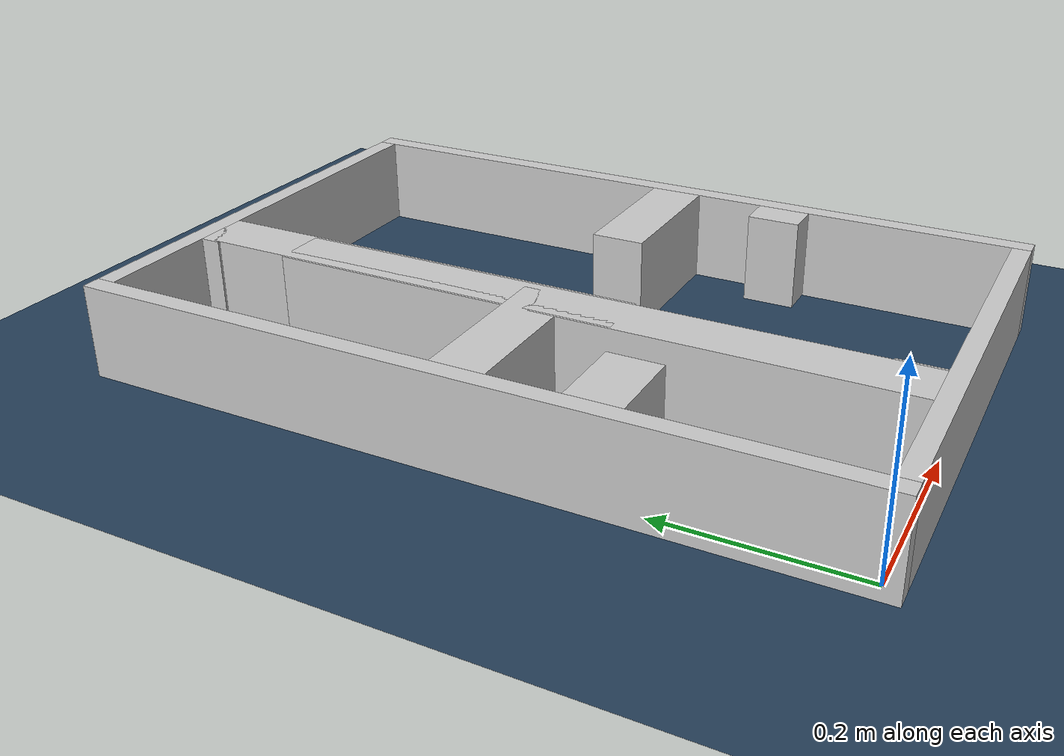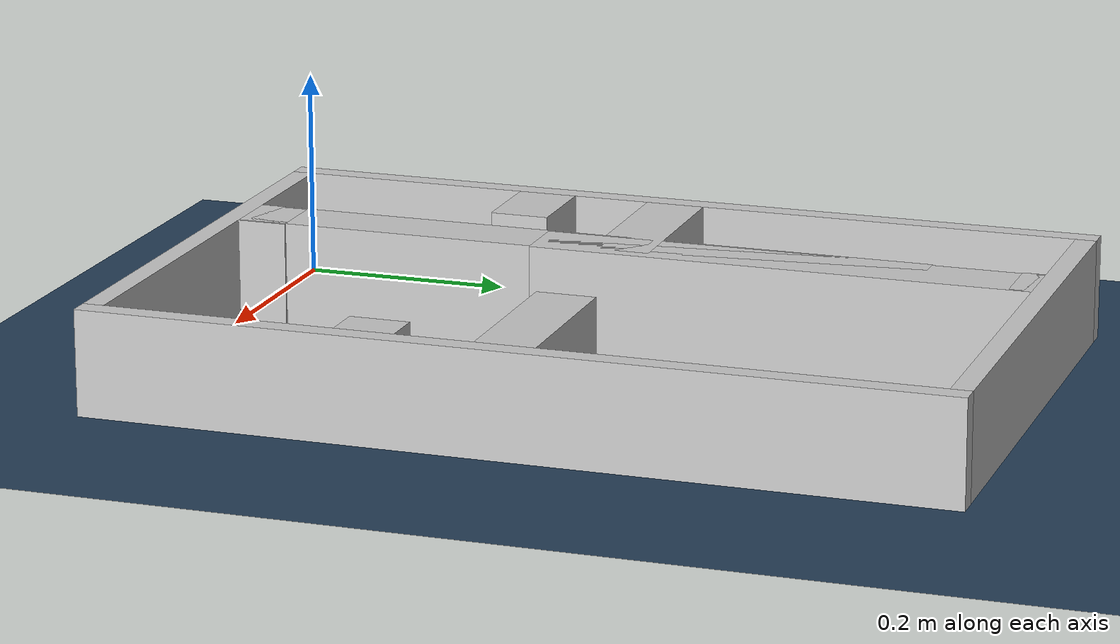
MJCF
<?xml version="1.0" ?>
<mujoco model="generated_real_template">
  <compiler angle="degree"/>
  <option timestep="0.002" integrator="implicitfast" iterations="100" cone="elliptic"/>
  <default>
    <geom density="1"/>
  </default>
  <asset>
    <texture builtin="gradient" height="3072" rgb1="0.3 0.5 0.7" rgb2="0 0 0" type="skybox" width="512"/>
    <texture builtin="checker" height="300" mark="edge" markrgb="0.8 0.8 0.8" name="groundplane" rgb1="0.2 0.3 0.4" rgb2="0.1 0.2 0.3" type="2d" width="300"/>
    <material name="groundplane" reflectance="0.2" texrepeat="5 5" texture="groundplane" texuniform="true"/>
  </asset>
  <worldbody>
    <light dir="0 0 -1" directional="true" pos="0 0 1.5"/>
    <geom name="floor" type="plane" condim="4" friction="0.5 0.005 0.001" material="groundplane" size="0 0 0.05"/>
    <body name="walls">
      <geom name="wall_boundary_left" type="box" condim="4" friction="1.0 0.005 0.0001" rgba="0.8 0.8 0.8 1" pos="-0.010000 0.387500 0.050000" euler="0 0 0.000000" size="0.010000 0.407500 0.050000"/>
      <geom name="wall_boundary_right" type="box" condim="4" friction="1.0 0.005 0.0001" rgba="0.8 0.8 0.8 1" pos="0.500000 0.387500 0.050000" euler="0 0 0.000000" size="0.010000 0.407500 0.050000"/>
      <geom name="wall_boundary_bottom" type="box" condim="4" friction="1.0 0.005 0.0001" rgba="0.8 0.8 0.8 1" pos="0.245000 -0.010000 0.050000" euler="0 0 0.000000" size="0.245000 0.010000 0.050000"/>
      <geom name="wall_boundary_top" type="box" condim="4" friction="1.0 0.005 0.0001" rgba="0.8 0.8 0.8 1" pos="0.245000 0.785000 0.050000" euler="0 0 0.000000" size="0.245000 0.010000 0.050000"/>
      <geom name="wall_inner_1_1" type="box" condim="4" friction="1.0 0.005 0.0001" rgba="0.8 0.8 0.8 1" pos="0.042266 0.248861 0.050000" euler="0 0 0.000000" size="0.042266 0.028500 0.050000"/>
      <geom name="wall_inner_1_2" type="box" condim="4" friction="1.0 0.005 0.0001" rgba="0.8 0.8 0.8 1" pos="0.470792 0.248861 0.050000" euler="0 0 0.000000" size="0.019208 0.028500 0.050000"/>
      <geom name="wall_inner_2_1" type="box" condim="4" friction="1.0 0.005 0.0001" rgba="0.8 0.8 0.8 1" pos="0.155605 0.334234 0.050000" euler="0 0 90.000000" size="0.334234 0.028500 0.050000"/>
      <geom name="wall_inner_2_2" type="box" condim="4" friction="1.0 0.005 0.0001" rgba="0.8 0.8 0.8 1" pos="0.155605 0.764244 0.050000" euler="0 0 90.000000" size="0.010756 0.028500 0.050000"/>
      <geom name="wall_inner_3_1" type="box" condim="4" friction="1.0 0.005 0.0001" rgba="0.8 0.8 0.8 1" pos="0.158082 0.023828 0.050000" euler="0 0 90.000000" size="0.023828 0.028500 0.050000"/>
      <geom name="wall_inner_3_2" type="box" condim="4" friction="1.0 0.005 0.0001" rgba="0.8 0.8 0.8 1" pos="0.158082 0.534906 0.050000" euler="0 0 90.000000" size="0.240094 0.028500 0.050000"/>
      <geom name="wall_inner_4_1" type="box" condim="4" friction="1.0 0.005 0.0001" rgba="0.8 0.8 0.8 1" pos="0.086944 0.379766 0.050000" euler="0 0 0.000000" size="0.086944 0.028500 0.050000"/>
      <geom name="wall_inner_4_2" type="box" condim="4" friction="1.0 0.005 0.0001" rgba="0.8 0.8 0.8 1" pos="0.408153 0.379766 0.050000" euler="0 0 0.000000" size="0.081847 0.028500 0.050000"/>
    </body>
  </worldbody>
</mujoco>
